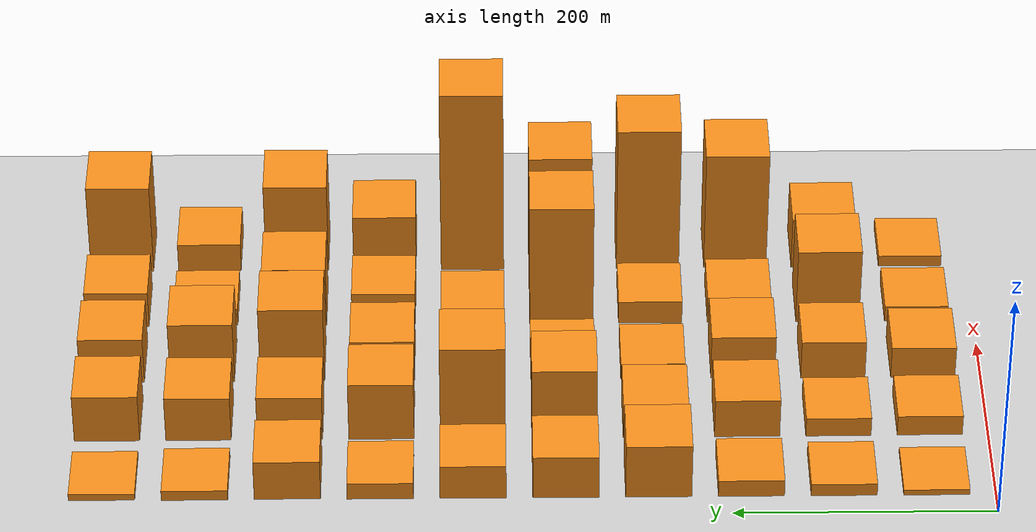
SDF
<sdf version="1.6">
 <world name="default">
  <model name="ground_plane">
   <static>1</static>
   <link name="link">
    <collision name="collision">
     <geometry><plane><normal>0 0 1</normal><size>2000 2000</size></plane></geometry>
     <surface>
      <contact><collide_bitmask>65535</collide_bitmask></contact>
      <friction><ode><mu>100</mu><mu2>50</mu2></ode></friction>
     </surface>
    </collision>
    <visual name="visual">
     <cast_shadows>0</cast_shadows>
     <geometry><plane><normal>0 0 1</normal><size>500 300</size></plane></geometry>
     <material>
      <script><uri>file://media/materials/scripts/gazebo.material</uri><name>Gazebo/Grey</name></script>
     </material>
    </visual>
   </link>
  </model>
  <model name="unit_box_000">
   <pose>45.00    45.00     2.00 0 0 0</pose>
   <static>1</static>
   <link name="link">
    <inertial>
     <mass>5000</mass>
     <inertia><ixx>200</ixx><ixy>0</ixy><ixz>0</ixz><iyy>200</iyy><iyz>0</iyz><izz>200</izz></inertia>
    </inertial>
    <collision name="collision"><geometry><box><size>50 50 5</size></box></geometry></collision>
    <visual name="visual">
     <geometry><box><size>50 50 5</size></box></geometry>
     <material>
      <script><name>Gazebo/Orange</name><uri>file://media/materials/scripts/gazebo.material</uri></script>
     </material>
    </visual>
   </link>
  </model>
  <model name="unit_box_001">
   <pose>115.00    45.00     9.00 0 0 0</pose>
   <static>1</static>
   <link name="link">
    <inertial>
     <mass>5000</mass>
     <inertia><ixx>200</ixx><ixy>0</ixy><ixz>0</ixz><iyy>200</iyy><iyz>0</iyz><izz>200</izz></inertia>
    </inertial>
    <collision name="collision"><geometry><box><size>50 50 18</size></box></geometry></collision>
    <visual name="visual">
     <geometry><box><size>50 50 18</size></box></geometry>
     <material>
      <script><name>Gazebo/Orange</name><uri>file://media/materials/scripts/gazebo.material</uri></script>
     </material>
    </visual>
   </link>
  </model>
  <model name="unit_box_002">
   <pose>185.00    45.00    14.00 0 0 0</pose>
   <static>1</static>
   <link name="link">
    <inertial>
     <mass>5000</mass>
     <inertia><ixx>200</ixx><ixy>0</ixy><ixz>0</ixz><iyy>200</iyy><iyz>0</iyz><izz>200</izz></inertia>
    </inertial>
    <collision name="collision"><geometry><box><size>50 50 29</size></box></geometry></collision>
    <visual name="visual">
     <geometry><box><size>50 50 29</size></box></geometry>
     <material>
      <script><name>Gazebo/Orange</name><uri>file://media/materials/scripts/gazebo.material</uri></script>
     </material>
    </visual>
   </link>
  </model>
  <model name="unit_box_003">
   <pose>255.00    45.00     7.00 0 0 0</pose>
   <static>1</static>
   <link name="link">
    <inertial>
     <mass>5000</mass>
     <inertia><ixx>200</ixx><ixy>0</ixy><ixz>0</ixz><iyy>200</iyy><iyz>0</iyz><izz>200</izz></inertia>
    </inertial>
    <collision name="collision"><geometry><box><size>50 50 14</size></box></geometry></collision>
    <visual name="visual">
     <geometry><box><size>50 50 14</size></box></geometry>
     <material>
      <script><name>Gazebo/Orange</name><uri>file://media/materials/scripts/gazebo.material</uri></script>
     </material>
    </visual>
   </link>
  </model>
  <model name="unit_box_004">
   <pose>325.00    45.00     5.00 0 0 0</pose>
   <static>1</static>
   <link name="link">
    <inertial>
     <mass>5000</mass>
     <inertia><ixx>200</ixx><ixy>0</ixy><ixz>0</ixz><iyy>200</iyy><iyz>0</iyz><izz>200</izz></inertia>
    </inertial>
    <collision name="collision"><geometry><box><size>50 50 10</size></box></geometry></collision>
    <visual name="visual">
     <geometry><box><size>50 50 10</size></box></geometry>
     <material>
      <script><name>Gazebo/Orange</name><uri>file://media/materials/scripts/gazebo.material</uri></script>
     </material>
    </visual>
   </link>
  </model>
  <model name="unit_box_010">
   <pose>45.00   115.00     5.00 0 0 0</pose>
   <static>1</static>
   <link name="link">
    <inertial>
     <mass>5000</mass>
     <inertia><ixx>200</ixx><ixy>0</ixy><ixz>0</ixz><iyy>200</iyy><iyz>0</iyz><izz>200</izz></inertia>
    </inertial>
    <collision name="collision"><geometry><box><size>50 50 11</size></box></geometry></collision>
    <visual name="visual">
     <geometry><box><size>50 50 11</size></box></geometry>
     <material>
      <script><name>Gazebo/Orange</name><uri>file://media/materials/scripts/gazebo.material</uri></script>
     </material>
    </visual>
   </link>
  </model>
  <model name="unit_box_011">
   <pose>115.00   115.00     8.00 0 0 0</pose>
   <static>1</static>
   <link name="link">
    <inertial>
     <mass>5000</mass>
     <inertia><ixx>200</ixx><ixy>0</ixy><ixz>0</ixz><iyy>200</iyy><iyz>0</iyz><izz>200</izz></inertia>
    </inertial>
    <collision name="collision"><geometry><box><size>50 50 17</size></box></geometry></collision>
    <visual name="visual">
     <geometry><box><size>50 50 17</size></box></geometry>
     <material>
      <script><name>Gazebo/Orange</name><uri>file://media/materials/scripts/gazebo.material</uri></script>
     </material>
    </visual>
   </link>
  </model>
  <model name="unit_box_012">
   <pose>185.00   115.00    17.00 0 0 0</pose>
   <static>1</static>
   <link name="link">
    <inertial>
     <mass>5000</mass>
     <inertia><ixx>200</ixx><ixy>0</ixy><ixz>0</ixz><iyy>200</iyy><iyz>0</iyz><izz>200</izz></inertia>
    </inertial>
    <collision name="collision"><geometry><box><size>50 50 35</size></box></geometry></collision>
    <visual name="visual">
     <geometry><box><size>50 50 35</size></box></geometry>
     <material>
      <script><name>Gazebo/Orange</name><uri>file://media/materials/scripts/gazebo.material</uri></script>
     </material>
    </visual>
   </link>
  </model>
  <model name="unit_box_013">
   <pose>255.00   115.00    34.00 0 0 0</pose>
   <static>1</static>
   <link name="link">
    <inertial>
     <mass>5000</mass>
     <inertia><ixx>200</ixx><ixy>0</ixy><ixz>0</ixz><iyy>200</iyy><iyz>0</iyz><izz>200</izz></inertia>
    </inertial>
    <collision name="collision"><geometry><box><size>50 50 69</size></box></geometry></collision>
    <visual name="visual">
     <geometry><box><size>50 50 69</size></box></geometry>
     <material>
      <script><name>Gazebo/Orange</name><uri>file://media/materials/scripts/gazebo.material</uri></script>
     </material>
    </visual>
   </link>
  </model>
  <model name="unit_box_014">
   <pose>325.00   115.00    23.00 0 0 0</pose>
   <static>1</static>
   <link name="link">
    <inertial>
     <mass>5000</mass>
     <inertia><ixx>200</ixx><ixy>0</ixy><ixz>0</ixz><iyy>200</iyy><iyz>0</iyz><izz>200</izz></inertia>
    </inertial>
    <collision name="collision"><geometry><box><size>50 50 47</size></box></geometry></collision>
    <visual name="visual">
     <geometry><box><size>50 50 47</size></box></geometry>
     <material>
      <script><name>Gazebo/Orange</name><uri>file://media/materials/scripts/gazebo.material</uri></script>
     </material>
    </visual>
   </link>
  </model>
  <model name="unit_box_020">
   <pose>45.00   185.00     7.00 0 0 0</pose>
   <static>1</static>
   <link name="link">
    <inertial>
     <mass>5000</mass>
     <inertia><ixx>200</ixx><ixy>0</ixy><ixz>0</ixz><iyy>200</iyy><iyz>0</iyz><izz>200</izz></inertia>
    </inertial>
    <collision name="collision"><geometry><box><size>50 50 15</size></box></geometry></collision>
    <visual name="visual">
     <geometry><box><size>50 50 15</size></box></geometry>
     <material>
      <script><name>Gazebo/Orange</name><uri>file://media/materials/scripts/gazebo.material</uri></script>
     </material>
    </visual>
   </link>
  </model>
  <model name="unit_box_021">
   <pose>115.00   185.00    17.00 0 0 0</pose>
   <static>1</static>
   <link name="link">
    <inertial>
     <mass>5000</mass>
     <inertia><ixx>200</ixx><ixy>0</ixy><ixz>0</ixz><iyy>200</iyy><iyz>0</iyz><izz>200</izz></inertia>
    </inertial>
    <collision name="collision"><geometry><box><size>50 50 35</size></box></geometry></collision>
    <visual name="visual">
     <geometry><box><size>50 50 35</size></box></geometry>
     <material>
      <script><name>Gazebo/Orange</name><uri>file://media/materials/scripts/gazebo.material</uri></script>
     </material>
    </visual>
   </link>
  </model>
  <model name="unit_box_022">
   <pose>185.00   185.00    20.00 0 0 0</pose>
   <static>1</static>
   <link name="link">
    <inertial>
     <mass>5000</mass>
     <inertia><ixx>200</ixx><ixy>0</ixy><ixz>0</ixz><iyy>200</iyy><iyz>0</iyz><izz>200</izz></inertia>
    </inertial>
    <collision name="collision"><geometry><box><size>50 50 40</size></box></geometry></collision>
    <visual name="visual">
     <geometry><box><size>50 50 40</size></box></geometry>
     <material>
      <script><name>Gazebo/Orange</name><uri>file://media/materials/scripts/gazebo.material</uri></script>
     </material>
    </visual>
   </link>
  </model>
  <model name="unit_box_023">
   <pose>255.00   185.00    12.00 0 0 0</pose>
   <static>1</static>
   <link name="link">
    <inertial>
     <mass>5000</mass>
     <inertia><ixx>200</ixx><ixy>0</ixy><ixz>0</ixz><iyy>200</iyy><iyz>0</iyz><izz>200</izz></inertia>
    </inertial>
    <collision name="collision"><geometry><box><size>50 50 24</size></box></geometry></collision>
    <visual name="visual">
     <geometry><box><size>50 50 24</size></box></geometry>
     <material>
      <script><name>Gazebo/Orange</name><uri>file://media/materials/scripts/gazebo.material</uri></script>
     </material>
    </visual>
   </link>
  </model>
  <model name="unit_box_024">
   <pose>325.00   185.00    55.00 0 0 0</pose>
   <static>1</static>
   <link name="link">
    <inertial>
     <mass>5000</mass>
     <inertia><ixx>200</ixx><ixy>0</ixy><ixz>0</ixz><iyy>200</iyy><iyz>0</iyz><izz>200</izz></inertia>
    </inertial>
    <collision name="collision"><geometry><box><size>50 50 110</size></box></geometry></collision>
    <visual name="visual">
     <geometry><box><size>50 50 110</size></box></geometry>
     <material>
      <script><name>Gazebo/Orange</name><uri>file://media/materials/scripts/gazebo.material</uri></script>
     </material>
    </visual>
   </link>
  </model>
  <model name="unit_box_030">
   <pose>45.00   255.00    24.00 0 0 0</pose>
   <static>1</static>
   <link name="link">
    <inertial>
     <mass>5000</mass>
     <inertia><ixx>200</ixx><ixy>0</ixy><ixz>0</ixz><iyy>200</iyy><iyz>0</iyz><izz>200</izz></inertia>
    </inertial>
    <collision name="collision"><geometry><box><size>50 50 49</size></box></geometry></collision>
    <visual name="visual">
     <geometry><box><size>50 50 49</size></box></geometry>
     <material>
      <script><name>Gazebo/Orange</name><uri>file://media/materials/scripts/gazebo.material</uri></script>
     </material>
    </visual>
   </link>
  </model>
  <model name="unit_box_031">
   <pose>115.00   255.00    15.00 0 0 0</pose>
   <static>1</static>
   <link name="link">
    <inertial>
     <mass>5000</mass>
     <inertia><ixx>200</ixx><ixy>0</ixy><ixz>0</ixz><iyy>200</iyy><iyz>0</iyz><izz>200</izz></inertia>
    </inertial>
    <collision name="collision"><geometry><box><size>50 50 31</size></box></geometry></collision>
    <visual name="visual">
     <geometry><box><size>50 50 31</size></box></geometry>
     <material>
      <script><name>Gazebo/Orange</name><uri>file://media/materials/scripts/gazebo.material</uri></script>
     </material>
    </visual>
   </link>
  </model>
  <model name="unit_box_032">
   <pose>185.00   255.00     7.00 0 0 0</pose>
   <static>1</static>
   <link name="link">
    <inertial>
     <mass>5000</mass>
     <inertia><ixx>200</ixx><ixy>0</ixy><ixz>0</ixz><iyy>200</iyy><iyz>0</iyz><izz>200</izz></inertia>
    </inertial>
    <collision name="collision"><geometry><box><size>50 50 15</size></box></geometry></collision>
    <visual name="visual">
     <geometry><box><size>50 50 15</size></box></geometry>
     <material>
      <script><name>Gazebo/Orange</name><uri>file://media/materials/scripts/gazebo.material</uri></script>
     </material>
    </visual>
   </link>
  </model>
  <model name="unit_box_033">
   <pose>255.00   255.00    10.00 0 0 0</pose>
   <static>1</static>
   <link name="link">
    <inertial>
     <mass>5000</mass>
     <inertia><ixx>200</ixx><ixy>0</ixy><ixz>0</ixz><iyy>200</iyy><iyz>0</iyz><izz>200</izz></inertia>
    </inertial>
    <collision name="collision"><geometry><box><size>50 50 21</size></box></geometry></collision>
    <visual name="visual">
     <geometry><box><size>50 50 21</size></box></geometry>
     <material>
      <script><name>Gazebo/Orange</name><uri>file://media/materials/scripts/gazebo.material</uri></script>
     </material>
    </visual>
   </link>
  </model>
  <model name="unit_box_034">
   <pose>325.00   255.00    67.00 0 0 0</pose>
   <static>1</static>
   <link name="link">
    <inertial>
     <mass>5000</mass>
     <inertia><ixx>200</ixx><ixy>0</ixy><ixz>0</ixz><iyy>200</iyy><iyz>0</iyz><izz>200</izz></inertia>
    </inertial>
    <collision name="collision"><geometry><box><size>50 50 135</size></box></geometry></collision>
    <visual name="visual">
     <geometry><box><size>50 50 135</size></box></geometry>
     <material>
      <script><name>Gazebo/Orange</name><uri>file://media/materials/scripts/gazebo.material</uri></script>
     </material>
    </visual>
   </link>
  </model>
  <model name="unit_box_040">
   <pose>45.00   325.00    19.00 0 0 0</pose>
   <static>1</static>
   <link name="link">
    <inertial>
     <mass>5000</mass>
     <inertia><ixx>200</ixx><ixy>0</ixy><ixz>0</ixz><iyy>200</iyy><iyz>0</iyz><izz>200</izz></inertia>
    </inertial>
    <collision name="collision"><geometry><box><size>50 50 39</size></box></geometry></collision>
    <visual name="visual">
     <geometry><box><size>50 50 39</size></box></geometry>
     <material>
      <script><name>Gazebo/Orange</name><uri>file://media/materials/scripts/gazebo.material</uri></script>
     </material>
    </visual>
   </link>
  </model>
  <model name="unit_box_041">
   <pose>115.00   325.00    32.00 0 0 0</pose>
   <static>1</static>
   <link name="link">
    <inertial>
     <mass>5000</mass>
     <inertia><ixx>200</ixx><ixy>0</ixy><ixz>0</ixz><iyy>200</iyy><iyz>0</iyz><izz>200</izz></inertia>
    </inertial>
    <collision name="collision"><geometry><box><size>50 50 65</size></box></geometry></collision>
    <visual name="visual">
     <geometry><box><size>50 50 65</size></box></geometry>
     <material>
      <script><name>Gazebo/Orange</name><uri>file://media/materials/scripts/gazebo.material</uri></script>
     </material>
    </visual>
   </link>
  </model>
  <model name="unit_box_042">
   <pose>185.00   325.00    10.00 0 0 0</pose>
   <static>1</static>
   <link name="link">
    <inertial>
     <mass>5000</mass>
     <inertia><ixx>200</ixx><ixy>0</ixy><ixz>0</ixz><iyy>200</iyy><iyz>0</iyz><izz>200</izz></inertia>
    </inertial>
    <collision name="collision"><geometry><box><size>50 50 20</size></box></geometry></collision>
    <visual name="visual">
     <geometry><box><size>50 50 20</size></box></geometry>
     <material>
      <script><name>Gazebo/Orange</name><uri>file://media/materials/scripts/gazebo.material</uri></script>
     </material>
    </visual>
   </link>
  </model>
  <model name="unit_box_043">
   <pose>255.00   325.00    56.00 0 0 0</pose>
   <static>1</static>
   <link name="link">
    <inertial>
     <mass>5000</mass>
     <inertia><ixx>200</ixx><ixy>0</ixy><ixz>0</ixz><iyy>200</iyy><iyz>0</iyz><izz>200</izz></inertia>
    </inertial>
    <collision name="collision"><geometry><box><size>50 50 113</size></box></geometry></collision>
    <visual name="visual">
     <geometry><box><size>50 50 113</size></box></geometry>
     <material>
      <script><name>Gazebo/Orange</name><uri>file://media/materials/scripts/gazebo.material</uri></script>
     </material>
    </visual>
   </link>
  </model>
  <model name="unit_box_044">
   <pose>325.00   325.00    54.00 0 0 0</pose>
   <static>1</static>
   <link name="link">
    <inertial>
     <mass>5000</mass>
     <inertia><ixx>200</ixx><ixy>0</ixy><ixz>0</ixz><iyy>200</iyy><iyz>0</iyz><izz>200</izz></inertia>
    </inertial>
    <collision name="collision"><geometry><box><size>50 50 109</size></box></geometry></collision>
    <visual name="visual">
     <geometry><box><size>50 50 109</size></box></geometry>
     <material>
      <script><name>Gazebo/Orange</name><uri>file://media/materials/scripts/gazebo.material</uri></script>
     </material>
    </visual>
   </link>
  </model>
  <model name="unit_box_050">
   <pose>45.00   395.00    15.00 0 0 0</pose>
   <static>1</static>
   <link name="link">
    <inertial>
     <mass>5000</mass>
     <inertia><ixx>200</ixx><ixy>0</ixy><ixz>0</ixz><iyy>200</iyy><iyz>0</iyz><izz>200</izz></inertia>
    </inertial>
    <collision name="collision"><geometry><box><size>50 50 31</size></box></geometry></collision>
    <visual name="visual">
     <geometry><box><size>50 50 31</size></box></geometry>
     <material>
      <script><name>Gazebo/Orange</name><uri>file://media/materials/scripts/gazebo.material</uri></script>
     </material>
    </visual>
   </link>
  </model>
  <model name="unit_box_051">
   <pose>115.00   395.00    43.00 0 0 0</pose>
   <static>1</static>
   <link name="link">
    <inertial>
     <mass>5000</mass>
     <inertia><ixx>200</ixx><ixy>0</ixy><ixz>0</ixz><iyy>200</iyy><iyz>0</iyz><izz>200</izz></inertia>
    </inertial>
    <collision name="collision"><geometry><box><size>50 50 87</size></box></geometry></collision>
    <visual name="visual">
     <geometry><box><size>50 50 87</size></box></geometry>
     <material>
      <script><name>Gazebo/Orange</name><uri>file://media/materials/scripts/gazebo.material</uri></script>
     </material>
    </visual>
   </link>
  </model>
  <model name="unit_box_052">
   <pose>185.00   395.00     8.00 0 0 0</pose>
   <static>1</static>
   <link name="link">
    <inertial>
     <mass>5000</mass>
     <inertia><ixx>200</ixx><ixy>0</ixy><ixz>0</ixz><iyy>200</iyy><iyz>0</iyz><izz>200</izz></inertia>
    </inertial>
    <collision name="collision"><geometry><box><size>50 50 17</size></box></geometry></collision>
    <visual name="visual">
     <geometry><box><size>50 50 17</size></box></geometry>
     <material>
      <script><name>Gazebo/Orange</name><uri>file://media/materials/scripts/gazebo.material</uri></script>
     </material>
    </visual>
   </link>
  </model>
  <model name="unit_box_053">
   <pose>255.00   395.00     7.00 0 0 0</pose>
   <static>1</static>
   <link name="link">
    <inertial>
     <mass>5000</mass>
     <inertia><ixx>200</ixx><ixy>0</ixy><ixz>0</ixz><iyy>200</iyy><iyz>0</iyz><izz>200</izz></inertia>
    </inertial>
    <collision name="collision"><geometry><box><size>50 50 14</size></box></geometry></collision>
    <visual name="visual">
     <geometry><box><size>50 50 14</size></box></geometry>
     <material>
      <script><name>Gazebo/Orange</name><uri>file://media/materials/scripts/gazebo.material</uri></script>
     </material>
    </visual>
   </link>
  </model>
  <model name="unit_box_054">
   <pose>325.00   395.00    85.00 0 0 0</pose>
   <static>1</static>
   <link name="link">
    <inertial>
     <mass>5000</mass>
     <inertia><ixx>200</ixx><ixy>0</ixy><ixz>0</ixz><iyy>200</iyy><iyz>0</iyz><izz>200</izz></inertia>
    </inertial>
    <collision name="collision"><geometry><box><size>50 50 171</size></box></geometry></collision>
    <visual name="visual">
     <geometry><box><size>50 50 171</size></box></geometry>
     <material>
      <script><name>Gazebo/Orange</name><uri>file://media/materials/scripts/gazebo.material</uri></script>
     </material>
    </visual>
   </link>
  </model>
  <model name="unit_box_060">
   <pose>45.00   465.00     7.00 0 0 0</pose>
   <static>1</static>
   <link name="link">
    <inertial>
     <mass>5000</mass>
     <inertia><ixx>200</ixx><ixy>0</ixy><ixz>0</ixz><iyy>200</iyy><iyz>0</iyz><izz>200</izz></inertia>
    </inertial>
    <collision name="collision"><geometry><box><size>50 50 15</size></box></geometry></collision>
    <visual name="visual">
     <geometry><box><size>50 50 15</size></box></geometry>
     <material>
      <script><name>Gazebo/Orange</name><uri>file://media/materials/scripts/gazebo.material</uri></script>
     </material>
    </visual>
   </link>
  </model>
  <model name="unit_box_061">
   <pose>115.00   465.00    26.00 0 0 0</pose>
   <static>1</static>
   <link name="link">
    <inertial>
     <mass>5000</mass>
     <inertia><ixx>200</ixx><ixy>0</ixy><ixz>0</ixz><iyy>200</iyy><iyz>0</iyz><izz>200</izz></inertia>
    </inertial>
    <collision name="collision"><geometry><box><size>50 50 53</size></box></geometry></collision>
    <visual name="visual">
     <geometry><box><size>50 50 53</size></box></geometry>
     <material>
      <script><name>Gazebo/Orange</name><uri>file://media/materials/scripts/gazebo.material</uri></script>
     </material>
    </visual>
   </link>
  </model>
  <model name="unit_box_062">
   <pose>185.00   465.00    19.00 0 0 0</pose>
   <static>1</static>
   <link name="link">
    <inertial>
     <mass>5000</mass>
     <inertia><ixx>200</ixx><ixy>0</ixy><ixz>0</ixz><iyy>200</iyy><iyz>0</iyz><izz>200</izz></inertia>
    </inertial>
    <collision name="collision"><geometry><box><size>50 50 38</size></box></geometry></collision>
    <visual name="visual">
     <geometry><box><size>50 50 38</size></box></geometry>
     <material>
      <script><name>Gazebo/Orange</name><uri>file://media/materials/scripts/gazebo.material</uri></script>
     </material>
    </visual>
   </link>
  </model>
  <model name="unit_box_063">
   <pose>255.00   465.00    15.00 0 0 0</pose>
   <static>1</static>
   <link name="link">
    <inertial>
     <mass>5000</mass>
     <inertia><ixx>200</ixx><ixy>0</ixy><ixz>0</ixz><iyy>200</iyy><iyz>0</iyz><izz>200</izz></inertia>
    </inertial>
    <collision name="collision"><geometry><box><size>50 50 30</size></box></geometry></collision>
    <visual name="visual">
     <geometry><box><size>50 50 30</size></box></geometry>
     <material>
      <script><name>Gazebo/Orange</name><uri>file://media/materials/scripts/gazebo.material</uri></script>
     </material>
    </visual>
   </link>
  </model>
  <model name="unit_box_064">
   <pose>325.00   465.00    26.00 0 0 0</pose>
   <static>1</static>
   <link name="link">
    <inertial>
     <mass>5000</mass>
     <inertia><ixx>200</ixx><ixy>0</ixy><ixz>0</ixz><iyy>200</iyy><iyz>0</iyz><izz>200</izz></inertia>
    </inertial>
    <collision name="collision"><geometry><box><size>50 50 52</size></box></geometry></collision>
    <visual name="visual">
     <geometry><box><size>50 50 52</size></box></geometry>
     <material>
      <script><name>Gazebo/Orange</name><uri>file://media/materials/scripts/gazebo.material</uri></script>
     </material>
    </visual>
   </link>
  </model>
  <model name="unit_box_070">
   <pose>45.00   535.00    18.00 0 0 0</pose>
   <static>1</static>
   <link name="link">
    <inertial>
     <mass>5000</mass>
     <inertia><ixx>200</ixx><ixy>0</ixy><ixz>0</ixz><iyy>200</iyy><iyz>0</iyz><izz>200</izz></inertia>
    </inertial>
    <collision name="collision"><geometry><box><size>50 50 36</size></box></geometry></collision>
    <visual name="visual">
     <geometry><box><size>50 50 36</size></box></geometry>
     <material>
      <script><name>Gazebo/Orange</name><uri>file://media/materials/scripts/gazebo.material</uri></script>
     </material>
    </visual>
   </link>
  </model>
  <model name="unit_box_071">
   <pose>115.00   535.00    20.00 0 0 0</pose>
   <static>1</static>
   <link name="link">
    <inertial>
     <mass>5000</mass>
     <inertia><ixx>200</ixx><ixy>0</ixy><ixz>0</ixz><iyy>200</iyy><iyz>0</iyz><izz>200</izz></inertia>
    </inertial>
    <collision name="collision"><geometry><box><size>50 50 41</size></box></geometry></collision>
    <visual name="visual">
     <geometry><box><size>50 50 41</size></box></geometry>
     <material>
      <script><name>Gazebo/Orange</name><uri>file://media/materials/scripts/gazebo.material</uri></script>
     </material>
    </visual>
   </link>
  </model>
  <model name="unit_box_072">
   <pose>185.00   535.00    35.00 0 0 0</pose>
   <static>1</static>
   <link name="link">
    <inertial>
     <mass>5000</mass>
     <inertia><ixx>200</ixx><ixy>0</ixy><ixz>0</ixz><iyy>200</iyy><iyz>0</iyz><izz>200</izz></inertia>
    </inertial>
    <collision name="collision"><geometry><box><size>50 50 70</size></box></geometry></collision>
    <visual name="visual">
     <geometry><box><size>50 50 70</size></box></geometry>
     <material>
      <script><name>Gazebo/Orange</name><uri>file://media/materials/scripts/gazebo.material</uri></script>
     </material>
    </visual>
   </link>
  </model>
  <model name="unit_box_073">
   <pose>255.00   535.00    27.00 0 0 0</pose>
   <static>1</static>
   <link name="link">
    <inertial>
     <mass>5000</mass>
     <inertia><ixx>200</ixx><ixy>0</ixy><ixz>0</ixz><iyy>200</iyy><iyz>0</iyz><izz>200</izz></inertia>
    </inertial>
    <collision name="collision"><geometry><box><size>50 50 55</size></box></geometry></collision>
    <visual name="visual">
     <geometry><box><size>50 50 55</size></box></geometry>
     <material>
      <script><name>Gazebo/Orange</name><uri>file://media/materials/scripts/gazebo.material</uri></script>
     </material>
    </visual>
   </link>
  </model>
  <model name="unit_box_074">
   <pose>325.00   535.00    41.00 0 0 0</pose>
   <static>1</static>
   <link name="link">
    <inertial>
     <mass>5000</mass>
     <inertia><ixx>200</ixx><ixy>0</ixy><ixz>0</ixz><iyy>200</iyy><iyz>0</iyz><izz>200</izz></inertia>
    </inertial>
    <collision name="collision"><geometry><box><size>50 50 83</size></box></geometry></collision>
    <visual name="visual">
     <geometry><box><size>50 50 83</size></box></geometry>
     <material>
      <script><name>Gazebo/Orange</name><uri>file://media/materials/scripts/gazebo.material</uri></script>
     </material>
    </visual>
   </link>
  </model>
  <model name="unit_box_080">
   <pose>45.00   605.00     4.00 0 0 0</pose>
   <static>1</static>
   <link name="link">
    <inertial>
     <mass>5000</mass>
     <inertia><ixx>200</ixx><ixy>0</ixy><ixz>0</ixz><iyy>200</iyy><iyz>0</iyz><izz>200</izz></inertia>
    </inertial>
    <collision name="collision"><geometry><box><size>50 50 9</size></box></geometry></collision>
    <visual name="visual">
     <geometry><box><size>50 50 9</size></box></geometry>
     <material>
      <script><name>Gazebo/Orange</name><uri>file://media/materials/scripts/gazebo.material</uri></script>
     </material>
    </visual>
   </link>
  </model>
  <model name="unit_box_081">
   <pose>115.00   605.00    20.00 0 0 0</pose>
   <static>1</static>
   <link name="link">
    <inertial>
     <mass>5000</mass>
     <inertia><ixx>200</ixx><ixy>0</ixy><ixz>0</ixz><iyy>200</iyy><iyz>0</iyz><izz>200</izz></inertia>
    </inertial>
    <collision name="collision"><geometry><box><size>50 50 41</size></box></geometry></collision>
    <visual name="visual">
     <geometry><box><size>50 50 41</size></box></geometry>
     <material>
      <script><name>Gazebo/Orange</name><uri>file://media/materials/scripts/gazebo.material</uri></script>
     </material>
    </visual>
   </link>
  </model>
  <model name="unit_box_082">
   <pose>185.00   605.00    28.00 0 0 0</pose>
   <static>1</static>
   <link name="link">
    <inertial>
     <mass>5000</mass>
     <inertia><ixx>200</ixx><ixy>0</ixy><ixz>0</ixz><iyy>200</iyy><iyz>0</iyz><izz>200</izz></inertia>
    </inertial>
    <collision name="collision"><geometry><box><size>50 50 56</size></box></geometry></collision>
    <visual name="visual">
     <geometry><box><size>50 50 56</size></box></geometry>
     <material>
      <script><name>Gazebo/Orange</name><uri>file://media/materials/scripts/gazebo.material</uri></script>
     </material>
    </visual>
   </link>
  </model>
  <model name="unit_box_083">
   <pose>255.00   605.00     8.00 0 0 0</pose>
   <static>1</static>
   <link name="link">
    <inertial>
     <mass>5000</mass>
     <inertia><ixx>200</ixx><ixy>0</ixy><ixz>0</ixz><iyy>200</iyy><iyz>0</iyz><izz>200</izz></inertia>
    </inertial>
    <collision name="collision"><geometry><box><size>50 50 16</size></box></geometry></collision>
    <visual name="visual">
     <geometry><box><size>50 50 16</size></box></geometry>
     <material>
      <script><name>Gazebo/Orange</name><uri>file://media/materials/scripts/gazebo.material</uri></script>
     </material>
    </visual>
   </link>
  </model>
  <model name="unit_box_084">
   <pose>325.00   605.00    13.00 0 0 0</pose>
   <static>1</static>
   <link name="link">
    <inertial>
     <mass>5000</mass>
     <inertia><ixx>200</ixx><ixy>0</ixy><ixz>0</ixz><iyy>200</iyy><iyz>0</iyz><izz>200</izz></inertia>
    </inertial>
    <collision name="collision"><geometry><box><size>50 50 26</size></box></geometry></collision>
    <visual name="visual">
     <geometry><box><size>50 50 26</size></box></geometry>
     <material>
      <script><name>Gazebo/Orange</name><uri>file://media/materials/scripts/gazebo.material</uri></script>
     </material>
    </visual>
   </link>
  </model>
  <model name="unit_box_090">
   <pose>45.00   675.00     3.00 0 0 0</pose>
   <static>1</static>
   <link name="link">
    <inertial>
     <mass>5000</mass>
     <inertia><ixx>200</ixx><ixy>0</ixy><ixz>0</ixz><iyy>200</iyy><iyz>0</iyz><izz>200</izz></inertia>
    </inertial>
    <collision name="collision"><geometry><box><size>50 50 6</size></box></geometry></collision>
    <visual name="visual">
     <geometry><box><size>50 50 6</size></box></geometry>
     <material>
      <script><name>Gazebo/Orange</name><uri>file://media/materials/scripts/gazebo.material</uri></script>
     </material>
    </visual>
   </link>
  </model>
  <model name="unit_box_091">
   <pose>115.00   675.00    21.00 0 0 0</pose>
   <static>1</static>
   <link name="link">
    <inertial>
     <mass>5000</mass>
     <inertia><ixx>200</ixx><ixy>0</ixy><ixz>0</ixz><iyy>200</iyy><iyz>0</iyz><izz>200</izz></inertia>
    </inertial>
    <collision name="collision"><geometry><box><size>50 50 43</size></box></geometry></collision>
    <visual name="visual">
     <geometry><box><size>50 50 43</size></box></geometry>
     <material>
      <script><name>Gazebo/Orange</name><uri>file://media/materials/scripts/gazebo.material</uri></script>
     </material>
    </visual>
   </link>
  </model>
  <model name="unit_box_092">
   <pose>185.00   675.00    21.00 0 0 0</pose>
   <static>1</static>
   <link name="link">
    <inertial>
     <mass>5000</mass>
     <inertia><ixx>200</ixx><ixy>0</ixy><ixz>0</ixz><iyy>200</iyy><iyz>0</iyz><izz>200</izz></inertia>
    </inertial>
    <collision name="collision"><geometry><box><size>50 50 42</size></box></geometry></collision>
    <visual name="visual">
     <geometry><box><size>50 50 42</size></box></geometry>
     <material>
      <script><name>Gazebo/Orange</name><uri>file://media/materials/scripts/gazebo.material</uri></script>
     </material>
    </visual>
   </link>
  </model>
  <model name="unit_box_093">
   <pose>255.00   675.00    16.00 0 0 0</pose>
   <static>1</static>
   <link name="link">
    <inertial>
     <mass>5000</mass>
     <inertia><ixx>200</ixx><ixy>0</ixy><ixz>0</ixz><iyy>200</iyy><iyz>0</iyz><izz>200</izz></inertia>
    </inertial>
    <collision name="collision"><geometry><box><size>50 50 33</size></box></geometry></collision>
    <visual name="visual">
     <geometry><box><size>50 50 33</size></box></geometry>
     <material>
      <script><name>Gazebo/Orange</name><uri>file://media/materials/scripts/gazebo.material</uri></script>
     </material>
    </visual>
   </link>
  </model>
  <model name="unit_box_094">
   <pose>325.00   675.00    41.00 0 0 0</pose>
   <static>1</static>
   <link name="link">
    <inertial>
     <mass>5000</mass>
     <inertia><ixx>200</ixx><ixy>0</ixy><ixz>0</ixz><iyy>200</iyy><iyz>0</iyz><izz>200</izz></inertia>
    </inertial>
    <collision name="collision"><geometry><box><size>50 50 83</size></box></geometry></collision>
    <visual name="visual">
     <geometry><box><size>50 50 83</size></box></geometry>
     <material>
      <script><name>Gazebo/Orange</name><uri>file://media/materials/scripts/gazebo.material</uri></script>
     </material>
    </visual>
   </link>
  </model>
 </world>
</sdf>
